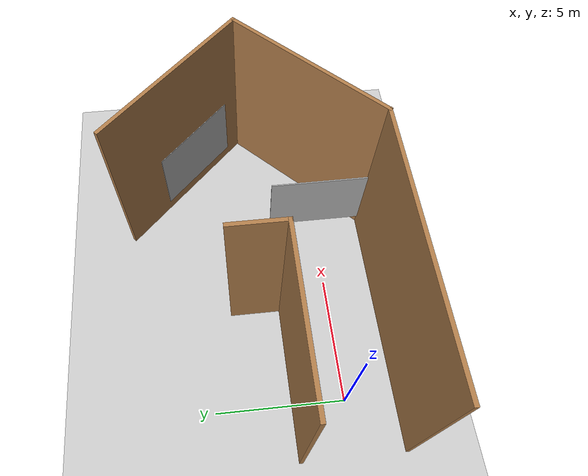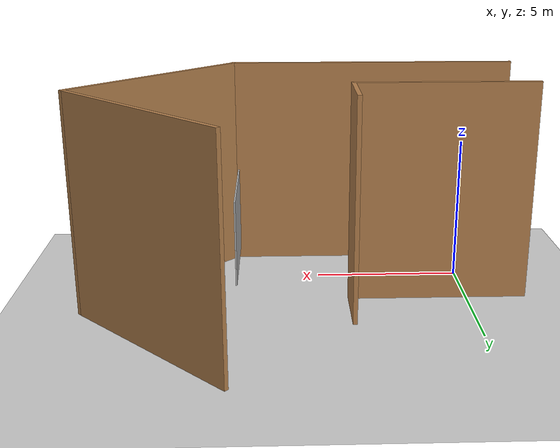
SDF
<sdf version="1.6">
 <world name="default">
  <scene><ambient>1 1 1 1</ambient><shadows>0</shadows><background>0.7 0.7 0.7 1</background></scene>
  <light name="sun" type="directional">
   <pose>0 0 10 0 -0 0</pose>
   <diffuse>0.8 0.8 0.8 1</diffuse>
   <specular>0.2 0.2 0.2 1</specular>
   <attenuation>
    <range>1000</range>
    <constant>0.9</constant>
    <linear>0.01</linear>
    <quadratic>0.001</quadratic>
   </attenuation>
   <direction>-0.5 0.1 -0.9</direction>
  </light>
  <model name="ground_plane">
   <static>1</static>
   <link name="link">
    <collision name="collision">
     <geometry><plane><normal>0 0 1</normal><size>100 100</size></plane></geometry>
     <surface>
      <contact><collide_bitmask>65535</collide_bitmask></contact>
      <friction><ode><mu>100</mu><mu2>50</mu2></ode></friction>
     </surface>
    </collision>
    <visual name="visual">
     <cast_shadows>0</cast_shadows>
     <geometry><plane><normal>0 0 1</normal><size>100 100</size></plane></geometry>
     <material>
      <script><uri>file://media/materials/scripts/gazebo.material</uri><name>Gazebo/Grey</name></script>
     </material>
    </visual>
   </link>
  </model>
  <gravity>0 0 -9.8</gravity>
  <magnetic_field>6e-06 2.3e-05 -4.2e-05</magnetic_field>
  <atmosphere type="adiabatic"/>
  <physics name="default_physics" default="0" type="ode">
   <max_step_size>0.001</max_step_size>
   <real_time_factor>1</real_time_factor>
   <real_time_update_rate>1000</real_time_update_rate>
  </physics>
  <scene><ambient>0.4 0.4 0.4 1</ambient><background>0.7 0.7 0.7 1</background><shadows>1</shadows></scene>
  <audio><device>default</device></audio>
  <spherical_coordinates>
   <surface_model>EARTH_WGS84</surface_model>
   <latitude_deg>0</latitude_deg>
   <longitude_deg>0</longitude_deg>
   <elevation>0</elevation>
   <heading_deg>0</heading_deg>
  </spherical_coordinates>
  <model name="labyrinth_2">
   <pose>5.51553 3 0 0 -0 0</pose>
   <link name="Wall_0">
    <collision name="Wall_0_Collision">
     <geometry><box><size>10.15 0.15 7.5</size></box></geometry>
     <pose>0 0 3.75 0 -0 0</pose>
    </collision>
    <visual name="Wall_0_Visual">
     <pose>0 0 3.75 0 -0 0</pose>
     <geometry><box><size>10.15 0.15 7.5</size></box></geometry>
     <material>
      <script><uri>file://media/materials/scripts/gazebo.material</uri><name>Gazebo/Wood</name></script>
      <ambient>1 1 1 1</ambient>
     </material>
     <meta><layer>0</layer></meta>
    </visual>
    <pose>-2.51553 -5 0 0 -0 0</pose>
   </link>
   <link name="Wall_2">
    <collision name="Wall_2_Collision">
     <geometry><box><size>6.15 0.15 7.5</size></box></geometry>
     <pose>0 0 3.75 0 -0 0</pose>
    </collision>
    <visual name="Wall_2_Visual">
     <pose>0 0 3.75 0 -0 0</pose>
     <geometry><box><size>6.15 0.15 7.5</size></box></geometry>
     <material>
      <script><uri>file://media/materials/scripts/gazebo.material</uri><name>Gazebo/Wood</name></script>
      <ambient>1 1 1 1</ambient>
     </material>
     <meta><layer>0</layer></meta>
    </visual>
    <pose>-4.51553 -1 0 0 -0 0</pose>
   </link>
   <link name="Wall_4">
    <collision name="Wall_4_Collision">
     <geometry><box><size>7.22107 0.15 7.5</size></box></geometry>
     <pose>0 0 3.75 0 -0 0</pose>
    </collision>
    <visual name="Wall_4_Visual">
     <pose>0 0 3.75 0 -0 0</pose>
     <geometry><box><size>7.22107 0.15 7.5</size></box></geometry>
     <material>
      <script><uri>file://media/materials/scripts/gazebo.material</uri><name>Gazebo/Wood</name></script>
      <ambient>1 1 1 1</ambient>
     </material>
     <meta><layer>0</layer></meta>
    </visual>
    <pose>4.98447 -2.5 0 0 -0 0.785398</pose>
   </link>
   <link name="Wall_6">
    <collision name="Wall_6_Collision">
     <geometry><box><size>2.15 0.15 7.5</size></box></geometry>
     <pose>0 0 3.75 0 -0 0</pose>
    </collision>
    <visual name="Wall_6_Visual">
     <pose>0 0 3.75 0 -0 0</pose>
     <geometry><box><size>2.15 0.15 7.5</size></box></geometry>
     <material>
      <script><uri>file://media/materials/scripts/gazebo.material</uri><name>Gazebo/Wood</name></script>
      <ambient>1 1 1 1</ambient>
     </material>
     <meta><layer>0</layer></meta>
    </visual>
    <pose>-1.51553 0 0 0 -0 1.5708</pose>
   </link>
   <link name="Wall_8">
    <collision name="Wall_8_Collision">
     <geometry><box><size>7.22107 0.15 7.5</size></box></geometry>
     <pose>0 0 3.75 0 -0 0</pose>
    </collision>
    <visual name="Wall_8_Visual">
     <pose>0 0 3.75 0 -0 0</pose>
     <geometry><box><size>7.22107 0.15 7.5</size></box></geometry>
     <material>
      <script><uri>file://media/materials/scripts/gazebo.material</uri><name>Gazebo/Wood</name></script>
      <ambient>1 1 1 1</ambient>
     </material>
     <meta><layer>0</layer></meta>
    </visual>
    <pose>4.98447 2.5 0 0 -0 2.35619</pose>
   </link>
   <static>1</static>
  </model>
  <model name="textured_shapes">
   <static>1</static>
   <pose>7.9 0 2 0 -0 1.5708</pose>
   <link name="box">
    <collision name="collision"><geometry><box><size>4 0.05 3</size></box></geometry></collision>
    <visual name="visual">
     <geometry><box><size>4 0.05 3</size></box></geometry>
     <material>
      <script>
       <uri>model://texture_model/materials/scripts</uri>
       <uri>model://texture_model/materials/textures</uri>
       <name>TexturedShape/Squares</name>
      </script>
     </material>
    </visual>
   </link>
  </model>
  <model name="textured_shapes_0">
   <static>1</static>
   <pose>10.95 4.95 2 0 0 -0.785397</pose>
   <link name="box">
    <collision name="collision"><geometry><box><size>4 0.05 3</size></box></geometry></collision>
    <visual name="visual">
     <geometry><box><size>4 0.05 3</size></box></geometry>
     <material>
      <script>
       <uri>model://texture_model/materials/scripts</uri>
       <uri>model://texture_model/materials/textures</uri>
       <name>TexturedShape/Squares</name>
      </script>
     </material>
    </visual>
   </link>
  </model>
 </world>
</sdf>
